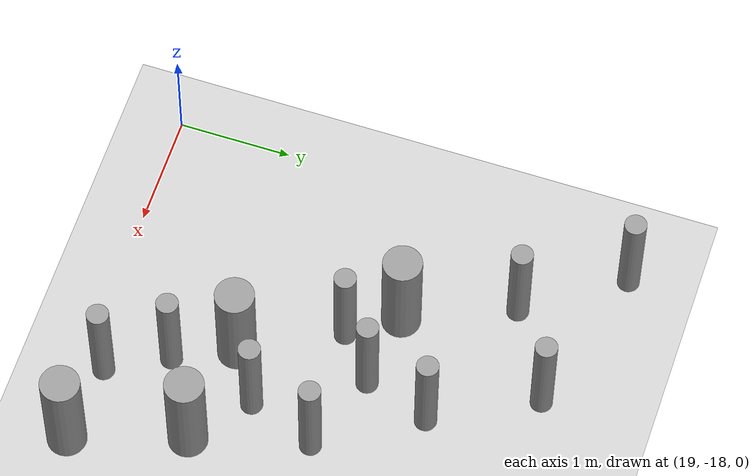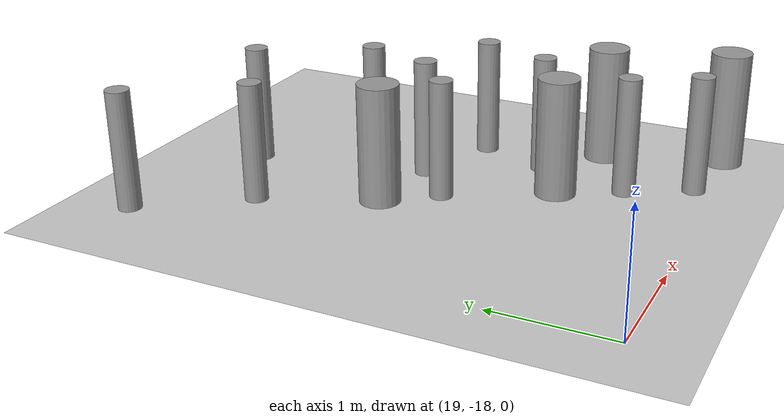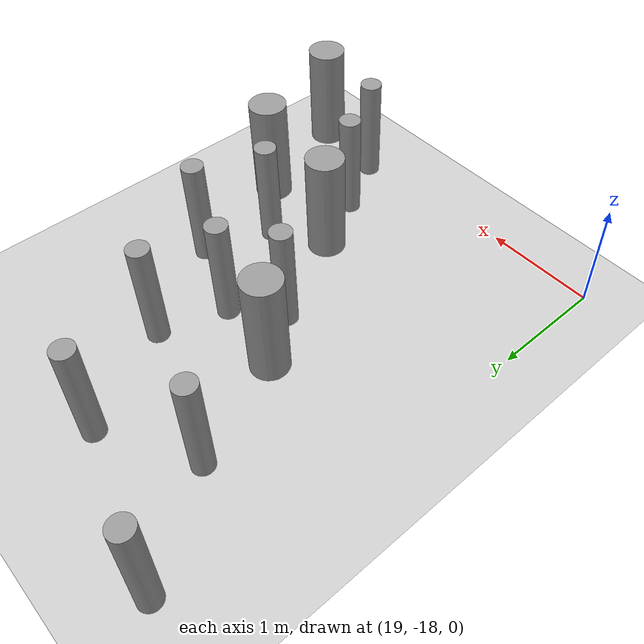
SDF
<sdf version="1.6">
 <world name="default">
  <model name="ground_plane">
   <static>1</static>
   <link name="link">
    <collision name="collision">
     <geometry><plane><normal>0 0 1</normal><size>100 100</size></plane></geometry>
     <surface><friction><ode><mu>100</mu><mu2>50</mu2></ode></friction></surface>
    </collision>
    <visual name="visual">
     <cast_shadows>0</cast_shadows>
     <geometry><plane><normal>0 0 1</normal><size>100 100</size></plane></geometry>
     <material>
      <script><uri>file://media/materials/scripts/gazebo.material</uri><name>Gazebo/Grey</name></script>
     </material>
    </visual>
   </link>
  </model>
  <model name="cyl_wall_clone_clone_1_clone_1_clone_clone_4">
   <link name="link_0">
    <pose>-2.73893 -0.366465 0 0 -0 0</pose>
    <inertial>
     <mass>0.0374993</mass>
     <inertia>
      <ixx>0.00321281</ixx>
      <ixy>0</ixy>
      <ixz>0</ixz>
      <iyy>0.00321281</iyy>
      <iyz>0</iyz>
      <izz>0.000175774</izz>
     </inertia>
    </inertial>
    <visual name="visual">
     <geometry><cylinder><radius>0.0968661</radius><length>1</length></cylinder></geometry>
     <material>
      <lighting>1</lighting>
      <script><uri>file://media/materials/scripts/gazebo.material</uri><name>Gazebo/Grey</name></script>
      <ambient>0.3 0.3 0.3 1</ambient>
      <diffuse>0.7 0.7 0.7 1</diffuse>
      <specular>0.01 0.01 0.01 1</specular>
      <emissive>0 0 0 1</emissive>
     </material>
    </visual>
    <collision name="collision">
     <geometry><cylinder><radius>0.096866</radius><length>1</length></cylinder></geometry>
     <surface>
      <friction>
       <ode><mu>1</mu><mu2>1</mu2><fdir1>0 0 0</fdir1><slip1>0</slip1><slip2>0</slip2></ode>
       <torsional>
        <coefficient>1</coefficient>
        <patch_radius>0</patch_radius>
        <surface_radius>0</surface_radius>
        <use_patch_radius>1</use_patch_radius>
        <ode><slip>0</slip></ode>
       </torsional>
      </friction>
      <bounce><restitution_coefficient>0</restitution_coefficient><threshold>1e+06</threshold></bounce>
      <contact>
       <collide_without_contact>0</collide_without_contact>
       <collide_without_contact_bitmask>1</collide_without_contact_bitmask>
       <collide_bitmask>1</collide_bitmask>
       <ode>
        <soft_cfm>0</soft_cfm>
        <soft_erp>0.2</soft_erp>
        <kp>1e+13</kp>
        <kd>1</kd>
        <max_vel>0.01</max_vel>
        <min_depth>0</min_depth>
       </ode>
       <bullet>
        <split_impulse>1</split_impulse>
        <split_impulse_penetration_threshold>-0.01</split_impulse_penetration_threshold>
        <soft_cfm>0</soft_cfm>
        <soft_erp>0.2</soft_erp>
        <kp>1e+13</kp>
        <kd>1</kd>
       </bullet>
      </contact>
     </surface>
    </collision>
   </link>
   <link name="link_0_clone">
    <pose>-1.73893 0.61877 0 0 -0 0</pose>
    <inertial>
     <mass>0.0374993</mass>
     <inertia>
      <ixx>0.00321281</ixx>
      <ixy>0</ixy>
      <ixz>0</ixz>
      <iyy>0.00321281</iyy>
      <iyz>0</iyz>
      <izz>0.000175774</izz>
     </inertia>
    </inertial>
    <visual name="visual">
     <geometry><cylinder><radius>0.0968661</radius><length>1</length></cylinder></geometry>
     <material>
      <lighting>1</lighting>
      <script><uri>file://media/materials/scripts/gazebo.material</uri><name>Gazebo/Grey</name></script>
      <ambient>0.3 0.3 0.3 1</ambient>
      <diffuse>0.7 0.7 0.7 1</diffuse>
      <specular>0.01 0.01 0.01 1</specular>
      <emissive>0 0 0 1</emissive>
      <shader type="pixel"/>
     </material>
    </visual>
    <collision name="collision">
     <geometry><cylinder><radius>0.096866</radius><length>1</length></cylinder></geometry>
     <surface>
      <friction>
       <ode><mu>1</mu><mu2>1</mu2><fdir1>0 0 0</fdir1><slip1>0</slip1><slip2>0</slip2></ode>
       <torsional>
        <coefficient>1</coefficient>
        <patch_radius>0</patch_radius>
        <surface_radius>0</surface_radius>
        <use_patch_radius>1</use_patch_radius>
        <ode><slip>0</slip></ode>
       </torsional>
      </friction>
      <bounce><restitution_coefficient>0</restitution_coefficient><threshold>1e+06</threshold></bounce>
      <contact>
       <collide_without_contact>0</collide_without_contact>
       <collide_without_contact_bitmask>1</collide_without_contact_bitmask>
       <collide_bitmask>1</collide_bitmask>
       <ode>
        <soft_cfm>0</soft_cfm>
        <soft_erp>0.2</soft_erp>
        <kp>1e+13</kp>
        <kd>1</kd>
        <max_vel>0.01</max_vel>
        <min_depth>0</min_depth>
       </ode>
       <bullet>
        <split_impulse>1</split_impulse>
        <split_impulse_penetration_threshold>-0.01</split_impulse_penetration_threshold>
        <soft_cfm>0</soft_cfm>
        <soft_erp>0.2</soft_erp>
        <kp>1e+13</kp>
        <kd>1</kd>
       </bullet>
      </contact>
     </surface>
    </collision>
   </link>
   <link name="link_0_clone_clone">
    <pose>-0.327073 0.143919 0 0 -0 0</pose>
    <inertial>
     <mass>0.0374993</mass>
     <inertia>
      <ixx>0.00321281</ixx>
      <ixy>0</ixy>
      <ixz>0</ixz>
      <iyy>0.00321281</iyy>
      <iyz>0</iyz>
      <izz>0.000175774</izz>
     </inertia>
    </inertial>
    <visual name="visual">
     <geometry><cylinder><radius>0.0968661</radius><length>1</length></cylinder></geometry>
     <material>
      <lighting>1</lighting>
      <script><uri>file://media/materials/scripts/gazebo.material</uri><name>Gazebo/Grey</name></script>
      <ambient>0.3 0.3 0.3 1</ambient>
      <diffuse>0.7 0.7 0.7 1</diffuse>
      <specular>0.01 0.01 0.01 1</specular>
      <emissive>0 0 0 1</emissive>
      <shader type="pixel"/>
     </material>
    </visual>
    <collision name="collision">
     <geometry><cylinder><radius>0.096866</radius><length>1</length></cylinder></geometry>
     <surface>
      <friction>
       <ode><mu>1</mu><mu2>1</mu2><fdir1>0 0 0</fdir1><slip1>0</slip1><slip2>0</slip2></ode>
       <torsional>
        <coefficient>1</coefficient>
        <patch_radius>0</patch_radius>
        <surface_radius>0</surface_radius>
        <use_patch_radius>1</use_patch_radius>
        <ode><slip>0</slip></ode>
       </torsional>
      </friction>
      <bounce><restitution_coefficient>0</restitution_coefficient><threshold>1e+06</threshold></bounce>
      <contact>
       <collide_without_contact>0</collide_without_contact>
       <collide_without_contact_bitmask>1</collide_without_contact_bitmask>
       <collide_bitmask>1</collide_bitmask>
       <ode>
        <soft_cfm>0</soft_cfm>
        <soft_erp>0.2</soft_erp>
        <kp>1e+13</kp>
        <kd>1</kd>
        <max_vel>0.01</max_vel>
        <min_depth>0</min_depth>
       </ode>
       <bullet>
        <split_impulse>1</split_impulse>
        <split_impulse_penetration_threshold>-0.01</split_impulse_penetration_threshold>
        <soft_cfm>0</soft_cfm>
        <soft_erp>0.2</soft_erp>
        <kp>1e+13</kp>
        <kd>1</kd>
       </bullet>
      </contact>
     </surface>
    </collision>
   </link>
   <link name="link_0_clone_clone_0">
    <pose>1.26107 -0.419359 0 0 -0 0</pose>
    <inertial>
     <mass>0.0374993</mass>
     <inertia>
      <ixx>0.00321281</ixx>
      <ixy>0</ixy>
      <ixz>0</ixz>
      <iyy>0.00321281</iyy>
      <iyz>0</iyz>
      <izz>0.000175774</izz>
     </inertia>
    </inertial>
    <visual name="visual">
     <geometry><cylinder><radius>0.0968661</radius><length>1</length></cylinder></geometry>
     <material>
      <lighting>1</lighting>
      <script><uri>file://media/materials/scripts/gazebo.material</uri><name>Gazebo/Grey</name></script>
      <ambient>0.3 0.3 0.3 1</ambient>
      <diffuse>0.7 0.7 0.7 1</diffuse>
      <specular>0.01 0.01 0.01 1</specular>
      <emissive>0 0 0 1</emissive>
      <shader type="pixel"/>
     </material>
    </visual>
    <collision name="collision">
     <geometry><cylinder><radius>0.096866</radius><length>1</length></cylinder></geometry>
     <surface>
      <friction>
       <ode><mu>1</mu><mu2>1</mu2><fdir1>0 0 0</fdir1><slip1>0</slip1><slip2>0</slip2></ode>
       <torsional>
        <coefficient>1</coefficient>
        <patch_radius>0</patch_radius>
        <surface_radius>0</surface_radius>
        <use_patch_radius>1</use_patch_radius>
        <ode><slip>0</slip></ode>
       </torsional>
      </friction>
      <bounce><restitution_coefficient>0</restitution_coefficient><threshold>1e+06</threshold></bounce>
      <contact>
       <collide_without_contact>0</collide_without_contact>
       <collide_without_contact_bitmask>1</collide_without_contact_bitmask>
       <collide_bitmask>1</collide_bitmask>
       <ode>
        <soft_cfm>0</soft_cfm>
        <soft_erp>0.2</soft_erp>
        <kp>1e+13</kp>
        <kd>1</kd>
        <max_vel>0.01</max_vel>
        <min_depth>0</min_depth>
       </ode>
       <bullet>
        <split_impulse>1</split_impulse>
        <split_impulse_penetration_threshold>-0.01</split_impulse_penetration_threshold>
        <soft_cfm>0</soft_cfm>
        <soft_erp>0.2</soft_erp>
        <kp>1e+13</kp>
        <kd>1</kd>
       </bullet>
      </contact>
     </surface>
    </collision>
   </link>
   <link name="link_0_clone_clone_1">
    <pose>-1.73893 -0.277168 0 0 -0 0</pose>
    <inertial>
     <mass>0.0374993</mass>
     <inertia>
      <ixx>0.00321281</ixx>
      <ixy>0</ixy>
      <ixz>0</ixz>
      <iyy>0.00321281</iyy>
      <iyz>0</iyz>
      <izz>0.000175774</izz>
     </inertia>
    </inertial>
    <visual name="visual">
     <geometry><cylinder><radius>0.0968661</radius><length>1</length></cylinder></geometry>
     <material>
      <lighting>1</lighting>
      <script><uri>file://media/materials/scripts/gazebo.material</uri><name>Gazebo/Grey</name></script>
      <ambient>0.3 0.3 0.3 1</ambient>
      <diffuse>0.7 0.7 0.7 1</diffuse>
      <specular>0.01 0.01 0.01 1</specular>
      <emissive>0 0 0 1</emissive>
      <shader type="pixel"/>
     </material>
    </visual>
    <collision name="collision">
     <geometry><cylinder><radius>0.096866</radius><length>1</length></cylinder></geometry>
     <surface>
      <friction>
       <ode><mu>1</mu><mu2>1</mu2><fdir1>0 0 0</fdir1><slip1>0</slip1><slip2>0</slip2></ode>
       <torsional>
        <coefficient>1</coefficient>
        <patch_radius>0</patch_radius>
        <surface_radius>0</surface_radius>
        <use_patch_radius>1</use_patch_radius>
        <ode><slip>0</slip></ode>
       </torsional>
      </friction>
      <bounce><restitution_coefficient>0</restitution_coefficient><threshold>1e+06</threshold></bounce>
      <contact>
       <collide_without_contact>0</collide_without_contact>
       <collide_without_contact_bitmask>1</collide_without_contact_bitmask>
       <collide_bitmask>1</collide_bitmask>
       <ode>
        <soft_cfm>0</soft_cfm>
        <soft_erp>0.2</soft_erp>
        <kp>1e+13</kp>
        <kd>1</kd>
        <max_vel>0.01</max_vel>
        <min_depth>0</min_depth>
       </ode>
       <bullet>
        <split_impulse>1</split_impulse>
        <split_impulse_penetration_threshold>-0.01</split_impulse_penetration_threshold>
        <soft_cfm>0</soft_cfm>
        <soft_erp>0.2</soft_erp>
        <kp>1e+13</kp>
        <kd>1</kd>
       </bullet>
      </contact>
     </surface>
    </collision>
   </link>
   <link name="link_0_clone_clone_2">
    <pose>-0.738934 0.593961 0 0 -0 0</pose>
    <inertial>
     <mass>0.0374993</mass>
     <inertia>
      <ixx>0.00321281</ixx>
      <ixy>0</ixy>
      <ixz>0</ixz>
      <iyy>0.00321281</iyy>
      <iyz>0</iyz>
      <izz>0.000175774</izz>
     </inertia>
    </inertial>
    <visual name="visual">
     <geometry><cylinder><radius>0.0968661</radius><length>1</length></cylinder></geometry>
     <material>
      <lighting>1</lighting>
      <script><uri>file://media/materials/scripts/gazebo.material</uri><name>Gazebo/Grey</name></script>
      <ambient>0.3 0.3 0.3 1</ambient>
      <diffuse>0.7 0.7 0.7 1</diffuse>
      <specular>0.01 0.01 0.01 1</specular>
      <emissive>0 0 0 1</emissive>
      <shader type="pixel"/>
     </material>
    </visual>
    <collision name="collision">
     <geometry><cylinder><radius>0.096866</radius><length>1</length></cylinder></geometry>
     <surface>
      <friction>
       <ode><mu>1</mu><mu2>1</mu2><fdir1>0 0 0</fdir1><slip1>0</slip1><slip2>0</slip2></ode>
       <torsional>
        <coefficient>1</coefficient>
        <patch_radius>0</patch_radius>
        <surface_radius>0</surface_radius>
        <use_patch_radius>1</use_patch_radius>
        <ode><slip>0</slip></ode>
       </torsional>
      </friction>
      <bounce><restitution_coefficient>0</restitution_coefficient><threshold>1e+06</threshold></bounce>
      <contact>
       <collide_without_contact>0</collide_without_contact>
       <collide_without_contact_bitmask>1</collide_without_contact_bitmask>
       <collide_bitmask>1</collide_bitmask>
       <ode>
        <soft_cfm>0</soft_cfm>
        <soft_erp>0.2</soft_erp>
        <kp>1e+13</kp>
        <kd>1</kd>
        <max_vel>0.01</max_vel>
        <min_depth>0</min_depth>
       </ode>
       <bullet>
        <split_impulse>1</split_impulse>
        <split_impulse_penetration_threshold>-0.01</split_impulse_penetration_threshold>
        <soft_cfm>0</soft_cfm>
        <soft_erp>0.2</soft_erp>
        <kp>1e+13</kp>
        <kd>1</kd>
       </bullet>
      </contact>
     </surface>
    </collision>
   </link>
   <link name="link_0_clone_clone_3">
    <pose>0.261066 0.624849 0 0 -0 0</pose>
    <inertial>
     <mass>0.0374993</mass>
     <inertia>
      <ixx>0.00321281</ixx>
      <ixy>0</ixy>
      <ixz>0</ixz>
      <iyy>0.00321281</iyy>
      <iyz>0</iyz>
      <izz>0.000175774</izz>
     </inertia>
    </inertial>
    <visual name="visual">
     <geometry><cylinder><radius>0.0968661</radius><length>1</length></cylinder></geometry>
     <material>
      <lighting>1</lighting>
      <script><uri>file://media/materials/scripts/gazebo.material</uri><name>Gazebo/Grey</name></script>
      <ambient>0.3 0.3 0.3 1</ambient>
      <diffuse>0.7 0.7 0.7 1</diffuse>
      <specular>0.01 0.01 0.01 1</specular>
      <emissive>0 0 0 1</emissive>
      <shader type="pixel"/>
     </material>
    </visual>
    <collision name="collision">
     <geometry><cylinder><radius>0.096866</radius><length>1</length></cylinder></geometry>
     <surface>
      <friction>
       <ode><mu>1</mu><mu2>1</mu2><fdir1>0 0 0</fdir1><slip1>0</slip1><slip2>0</slip2></ode>
       <torsional>
        <coefficient>1</coefficient>
        <patch_radius>0</patch_radius>
        <surface_radius>0</surface_radius>
        <use_patch_radius>1</use_patch_radius>
        <ode><slip>0</slip></ode>
       </torsional>
      </friction>
      <bounce><restitution_coefficient>0</restitution_coefficient><threshold>1e+06</threshold></bounce>
      <contact>
       <collide_without_contact>0</collide_without_contact>
       <collide_without_contact_bitmask>1</collide_without_contact_bitmask>
       <collide_bitmask>1</collide_bitmask>
       <ode>
        <soft_cfm>0</soft_cfm>
        <soft_erp>0.2</soft_erp>
        <kp>1e+13</kp>
        <kd>1</kd>
        <max_vel>0.01</max_vel>
        <min_depth>0</min_depth>
       </ode>
       <bullet>
        <split_impulse>1</split_impulse>
        <split_impulse_penetration_threshold>-0.01</split_impulse_penetration_threshold>
        <soft_cfm>0</soft_cfm>
        <soft_erp>0.2</soft_erp>
        <kp>1e+13</kp>
        <kd>1</kd>
       </bullet>
      </contact>
     </surface>
    </collision>
   </link>
   <link name="link_0_clone_clone_4">
    <pose>-0.239049 -0.353105 0 0 -0 0</pose>
    <inertial>
     <mass>0.0374993</mass>
     <inertia>
      <ixx>0.00321281</ixx>
      <ixy>0</ixy>
      <ixz>0</ixz>
      <iyy>0.00321281</iyy>
      <iyz>0</iyz>
      <izz>0.000175774</izz>
     </inertia>
    </inertial>
    <visual name="visual">
     <geometry><cylinder><radius>0.0968661</radius><length>1</length></cylinder></geometry>
     <material>
      <lighting>1</lighting>
      <script><uri>file://media/materials/scripts/gazebo.material</uri><name>Gazebo/Grey</name></script>
      <ambient>0.3 0.3 0.3 1</ambient>
      <diffuse>0.7 0.7 0.7 1</diffuse>
      <specular>0.01 0.01 0.01 1</specular>
      <emissive>0 0 0 1</emissive>
      <shader type="pixel"/>
     </material>
    </visual>
    <collision name="collision">
     <geometry><cylinder><radius>0.096866</radius><length>1</length></cylinder></geometry>
     <surface>
      <friction>
       <ode><mu>1</mu><mu2>1</mu2><fdir1>0 0 0</fdir1><slip1>0</slip1><slip2>0</slip2></ode>
       <torsional>
        <coefficient>1</coefficient>
        <patch_radius>0</patch_radius>
        <surface_radius>0</surface_radius>
        <use_patch_radius>1</use_patch_radius>
        <ode><slip>0</slip></ode>
       </torsional>
      </friction>
      <bounce><restitution_coefficient>0</restitution_coefficient><threshold>1e+06</threshold></bounce>
      <contact>
       <collide_without_contact>0</collide_without_contact>
       <collide_without_contact_bitmask>1</collide_without_contact_bitmask>
       <collide_bitmask>1</collide_bitmask>
       <ode>
        <soft_cfm>0</soft_cfm>
        <soft_erp>0.2</soft_erp>
        <kp>1e+13</kp>
        <kd>1</kd>
        <max_vel>0.01</max_vel>
        <min_depth>0</min_depth>
       </ode>
       <bullet>
        <split_impulse>1</split_impulse>
        <split_impulse_penetration_threshold>-0.01</split_impulse_penetration_threshold>
        <soft_cfm>0</soft_cfm>
        <soft_erp>0.2</soft_erp>
        <kp>1e+13</kp>
        <kd>1</kd>
       </bullet>
      </contact>
     </surface>
    </collision>
   </link>
   <link name="link_0_clone_clone_5">
    <pose>0.672792 0.143919 0 0 -0 0</pose>
    <inertial>
     <mass>0.0374993</mass>
     <inertia>
      <ixx>0.00321281</ixx>
      <ixy>0</ixy>
      <ixz>0</ixz>
      <iyy>0.00321281</iyy>
      <iyz>0</iyz>
      <izz>0.000175774</izz>
     </inertia>
    </inertial>
    <visual name="visual">
     <geometry><cylinder><radius>0.0968661</radius><length>1</length></cylinder></geometry>
     <material>
      <lighting>1</lighting>
      <script><uri>file://media/materials/scripts/gazebo.material</uri><name>Gazebo/Grey</name></script>
      <ambient>0.3 0.3 0.3 1</ambient>
      <diffuse>0.7 0.7 0.7 1</diffuse>
      <specular>0.01 0.01 0.01 1</specular>
      <emissive>0 0 0 1</emissive>
      <shader type="pixel"/>
     </material>
    </visual>
    <collision name="collision">
     <geometry><cylinder><radius>0.096866</radius><length>1</length></cylinder></geometry>
     <surface>
      <friction>
       <ode><mu>1</mu><mu2>1</mu2><fdir1>0 0 0</fdir1><slip1>0</slip1><slip2>0</slip2></ode>
       <torsional>
        <coefficient>1</coefficient>
        <patch_radius>0</patch_radius>
        <surface_radius>0</surface_radius>
        <use_patch_radius>1</use_patch_radius>
        <ode><slip>0</slip></ode>
       </torsional>
      </friction>
      <bounce><restitution_coefficient>0</restitution_coefficient><threshold>1e+06</threshold></bounce>
      <contact>
       <collide_without_contact>0</collide_without_contact>
       <collide_without_contact_bitmask>1</collide_without_contact_bitmask>
       <collide_bitmask>1</collide_bitmask>
       <ode>
        <soft_cfm>0</soft_cfm>
        <soft_erp>0.2</soft_erp>
        <kp>1e+13</kp>
        <kd>1</kd>
        <max_vel>0.01</max_vel>
        <min_depth>0</min_depth>
       </ode>
       <bullet>
        <split_impulse>1</split_impulse>
        <split_impulse_penetration_threshold>-0.01</split_impulse_penetration_threshold>
        <soft_cfm>0</soft_cfm>
        <soft_erp>0.2</soft_erp>
        <kp>1e+13</kp>
        <kd>1</kd>
       </bullet>
      </contact>
     </surface>
    </collision>
   </link>
   <link name="link_0_clone_clone_6">
    <pose>1.84596 -0.433423 0 0 -0 0</pose>
    <inertial>
     <mass>0.0374993</mass>
     <inertia>
      <ixx>0.00321281</ixx>
      <ixy>0</ixy>
      <ixz>0</ixz>
      <iyy>0.00321281</iyy>
      <iyz>0</iyz>
      <izz>0.000175774</izz>
     </inertia>
    </inertial>
    <visual name="visual">
     <geometry><cylinder><radius>0.0968661</radius><length>1</length></cylinder></geometry>
     <material>
      <lighting>1</lighting>
      <script><uri>file://media/materials/scripts/gazebo.material</uri><name>Gazebo/Grey</name></script>
      <ambient>0.3 0.3 0.3 1</ambient>
      <diffuse>0.7 0.7 0.7 1</diffuse>
      <specular>0.01 0.01 0.01 1</specular>
      <emissive>0 0 0 1</emissive>
      <shader type="pixel"/>
     </material>
    </visual>
    <collision name="collision">
     <geometry><cylinder><radius>0.096866</radius><length>1</length></cylinder></geometry>
     <surface>
      <friction>
       <ode><mu>1</mu><mu2>1</mu2><fdir1>0 0 0</fdir1><slip1>0</slip1><slip2>0</slip2></ode>
       <torsional>
        <coefficient>1</coefficient>
        <patch_radius>0</patch_radius>
        <surface_radius>0</surface_radius>
        <use_patch_radius>1</use_patch_radius>
        <ode><slip>0</slip></ode>
       </torsional>
      </friction>
      <bounce><restitution_coefficient>0</restitution_coefficient><threshold>1e+06</threshold></bounce>
      <contact>
       <collide_without_contact>0</collide_without_contact>
       <collide_without_contact_bitmask>1</collide_without_contact_bitmask>
       <collide_bitmask>1</collide_bitmask>
       <ode>
        <soft_cfm>0</soft_cfm>
        <soft_erp>0.2</soft_erp>
        <kp>1e+13</kp>
        <kd>1</kd>
        <max_vel>0.01</max_vel>
        <min_depth>0</min_depth>
       </ode>
       <bullet>
        <split_impulse>1</split_impulse>
        <split_impulse_penetration_threshold>-0.01</split_impulse_penetration_threshold>
        <soft_cfm>0</soft_cfm>
        <soft_erp>0.2</soft_erp>
        <kp>1e+13</kp>
        <kd>1</kd>
       </bullet>
      </contact>
     </surface>
    </collision>
   </link>
   <link name="link_1">
    <pose>-0.738934 -0.397931 0 0 -0 0</pose>
    <inertial>
     <mass>0.117398</mass>
     <inertia>
      <ixx>0.0106445</ixx>
      <ixy>0</ixy>
      <ixz>0</ixz>
      <iyy>0.0106445</iyy>
      <iyz>0</iyz>
      <izz>0.00172278</izz>
     </inertia>
    </inertial>
    <visual name="visual">
     <geometry><cylinder><radius>0.171317</radius><length>1</length></cylinder></geometry>
     <material>
      <lighting>1</lighting>
      <script><uri>file://media/materials/scripts/gazebo.material</uri><name>Gazebo/Grey</name></script>
      <ambient>0.3 0.3 0.3 1</ambient>
      <diffuse>0.7 0.7 0.7 1</diffuse>
      <specular>0.01 0.01 0.01 1</specular>
      <emissive>0 0 0 1</emissive>
     </material>
    </visual>
    <collision name="collision">
     <geometry><cylinder><radius>0.171317</radius><length>1</length></cylinder></geometry>
     <surface>
      <friction>
       <ode><mu>1</mu><mu2>1</mu2><fdir1>0 0 0</fdir1><slip1>0</slip1><slip2>0</slip2></ode>
       <torsional>
        <coefficient>1</coefficient>
        <patch_radius>0</patch_radius>
        <surface_radius>0</surface_radius>
        <use_patch_radius>1</use_patch_radius>
        <ode><slip>0</slip></ode>
       </torsional>
      </friction>
      <bounce><restitution_coefficient>0</restitution_coefficient><threshold>1e+06</threshold></bounce>
      <contact>
       <collide_without_contact>0</collide_without_contact>
       <collide_without_contact_bitmask>1</collide_without_contact_bitmask>
       <collide_bitmask>1</collide_bitmask>
       <ode>
        <soft_cfm>0</soft_cfm>
        <soft_erp>0.2</soft_erp>
        <kp>1e+13</kp>
        <kd>1</kd>
        <max_vel>0.01</max_vel>
        <min_depth>0</min_depth>
       </ode>
       <bullet>
        <split_impulse>1</split_impulse>
        <split_impulse_penetration_threshold>-0.01</split_impulse_penetration_threshold>
        <soft_cfm>0</soft_cfm>
        <soft_erp>0.2</soft_erp>
        <kp>1e+13</kp>
        <kd>1</kd>
       </bullet>
      </contact>
     </surface>
    </collision>
   </link>
   <link name="link_1_clone">
    <pose>0.697784 -0.380861 0 0 -0 0</pose>
    <inertial>
     <mass>0.117398</mass>
     <inertia>
      <ixx>0.0106445</ixx>
      <ixy>0</ixy>
      <ixz>0</ixz>
      <iyy>0.0106445</iyy>
      <iyz>0</iyz>
      <izz>0.00172278</izz>
     </inertia>
    </inertial>
    <visual name="visual">
     <geometry><cylinder><radius>0.171317</radius><length>1</length></cylinder></geometry>
     <material>
      <lighting>1</lighting>
      <script><uri>file://media/materials/scripts/gazebo.material</uri><name>Gazebo/Grey</name></script>
      <ambient>0.3 0.3 0.3 1</ambient>
      <diffuse>0.7 0.7 0.7 1</diffuse>
      <specular>0.01 0.01 0.01 1</specular>
      <emissive>0 0 0 1</emissive>
      <shader type="pixel"/>
     </material>
    </visual>
    <collision name="collision">
     <geometry><cylinder><radius>0.171317</radius><length>1</length></cylinder></geometry>
     <surface>
      <friction>
       <ode><mu>1</mu><mu2>1</mu2><fdir1>0 0 0</fdir1><slip1>0</slip1><slip2>0</slip2></ode>
       <torsional>
        <coefficient>1</coefficient>
        <patch_radius>0</patch_radius>
        <surface_radius>0</surface_radius>
        <use_patch_radius>1</use_patch_radius>
        <ode><slip>0</slip></ode>
       </torsional>
      </friction>
      <bounce><restitution_coefficient>0</restitution_coefficient><threshold>1e+06</threshold></bounce>
      <contact>
       <collide_without_contact>0</collide_without_contact>
       <collide_without_contact_bitmask>1</collide_without_contact_bitmask>
       <collide_bitmask>1</collide_bitmask>
       <ode>
        <soft_cfm>0</soft_cfm>
        <soft_erp>0.2</soft_erp>
        <kp>1e+13</kp>
        <kd>1</kd>
        <max_vel>0.01</max_vel>
        <min_depth>0</min_depth>
       </ode>
       <bullet>
        <split_impulse>1</split_impulse>
        <split_impulse_penetration_threshold>-0.01</split_impulse_penetration_threshold>
        <soft_cfm>0</soft_cfm>
        <soft_erp>0.2</soft_erp>
        <kp>1e+13</kp>
        <kd>1</kd>
       </bullet>
      </contact>
     </surface>
    </collision>
   </link>
   <link name="link_1_clone_0">
    <pose>1.26107 0.358974 0 0 -0 0</pose>
    <inertial>
     <mass>0.117398</mass>
     <inertia>
      <ixx>0.0106445</ixx>
      <ixy>0</ixy>
      <ixz>0</ixz>
      <iyy>0.0106445</iyy>
      <iyz>0</iyz>
      <izz>0.00172278</izz>
     </inertia>
    </inertial>
    <visual name="visual">
     <geometry><cylinder><radius>0.171317</radius><length>1</length></cylinder></geometry>
     <material>
      <lighting>1</lighting>
      <script><uri>file://media/materials/scripts/gazebo.material</uri><name>Gazebo/Grey</name></script>
      <ambient>0.3 0.3 0.3 1</ambient>
      <diffuse>0.7 0.7 0.7 1</diffuse>
      <specular>0.01 0.01 0.01 1</specular>
      <emissive>0 0 0 1</emissive>
      <shader type="pixel"/>
     </material>
    </visual>
    <collision name="collision">
     <geometry><cylinder><radius>0.171317</radius><length>1</length></cylinder></geometry>
     <surface>
      <friction>
       <ode><mu>1</mu><mu2>1</mu2><fdir1>0 0 0</fdir1><slip1>0</slip1><slip2>0</slip2></ode>
       <torsional>
        <coefficient>1</coefficient>
        <patch_radius>0</patch_radius>
        <surface_radius>0</surface_radius>
        <use_patch_radius>1</use_patch_radius>
        <ode><slip>0</slip></ode>
       </torsional>
      </friction>
      <bounce><restitution_coefficient>0</restitution_coefficient><threshold>1e+06</threshold></bounce>
      <contact>
       <collide_without_contact>0</collide_without_contact>
       <collide_without_contact_bitmask>1</collide_without_contact_bitmask>
       <collide_bitmask>1</collide_bitmask>
       <ode>
        <soft_cfm>0</soft_cfm>
        <soft_erp>0.2</soft_erp>
        <kp>1e+13</kp>
        <kd>1</kd>
        <max_vel>0.01</max_vel>
        <min_depth>0</min_depth>
       </ode>
       <bullet>
        <split_impulse>1</split_impulse>
        <split_impulse_penetration_threshold>-0.01</split_impulse_penetration_threshold>
        <soft_cfm>0</soft_cfm>
        <soft_erp>0.2</soft_erp>
        <kp>1e+13</kp>
        <kd>1</kd>
       </bullet>
      </contact>
     </surface>
    </collision>
   </link>
   <link name="link_1_clone_1">
    <pose>2.26107 0.143919 0 0 -0 0</pose>
    <inertial>
     <mass>0.117398</mass>
     <inertia>
      <ixx>0.0106445</ixx>
      <ixy>0</ixy>
      <ixz>0</ixz>
      <iyy>0.0106445</iyy>
      <iyz>0</iyz>
      <izz>0.00172278</izz>
     </inertia>
    </inertial>
    <visual name="visual">
     <geometry><cylinder><radius>0.171317</radius><length>1</length></cylinder></geometry>
     <material>
      <lighting>1</lighting>
      <script><uri>file://media/materials/scripts/gazebo.material</uri><name>Gazebo/Grey</name></script>
      <ambient>0.3 0.3 0.3 1</ambient>
      <diffuse>0.7 0.7 0.7 1</diffuse>
      <specular>0.01 0.01 0.01 1</specular>
      <emissive>0 0 0 1</emissive>
      <shader type="pixel"/>
     </material>
    </visual>
    <collision name="collision">
     <geometry><cylinder><radius>0.171317</radius><length>1</length></cylinder></geometry>
     <surface>
      <friction>
       <ode><mu>1</mu><mu2>1</mu2><fdir1>0 0 0</fdir1><slip1>0</slip1><slip2>0</slip2></ode>
       <torsional>
        <coefficient>1</coefficient>
        <patch_radius>0</patch_radius>
        <surface_radius>0</surface_radius>
        <use_patch_radius>1</use_patch_radius>
        <ode><slip>0</slip></ode>
       </torsional>
      </friction>
      <bounce><restitution_coefficient>0</restitution_coefficient><threshold>1e+06</threshold></bounce>
      <contact>
       <collide_without_contact>0</collide_without_contact>
       <collide_without_contact_bitmask>1</collide_without_contact_bitmask>
       <collide_bitmask>1</collide_bitmask>
       <ode>
        <soft_cfm>0</soft_cfm>
        <soft_erp>0.2</soft_erp>
        <kp>1e+13</kp>
        <kd>1</kd>
        <max_vel>0.01</max_vel>
        <min_depth>0</min_depth>
       </ode>
       <bullet>
        <split_impulse>1</split_impulse>
        <split_impulse_penetration_threshold>-0.01</split_impulse_penetration_threshold>
        <soft_cfm>0</soft_cfm>
        <soft_erp>0.2</soft_erp>
        <kp>1e+13</kp>
        <kd>1</kd>
       </bullet>
      </contact>
     </surface>
    </collision>
   </link>
   <static>1</static>
   <pose>20.9664 -15.9951 0.5 0 0 -1.04703</pose>
  </model>
 </world>
</sdf>
